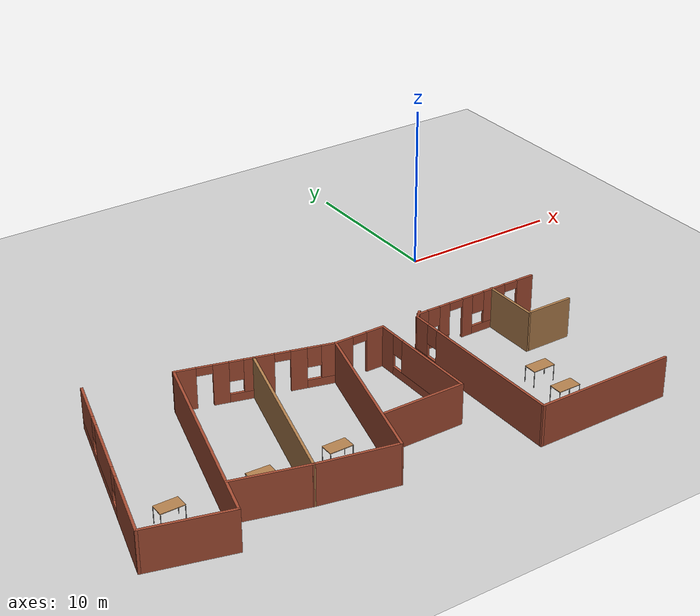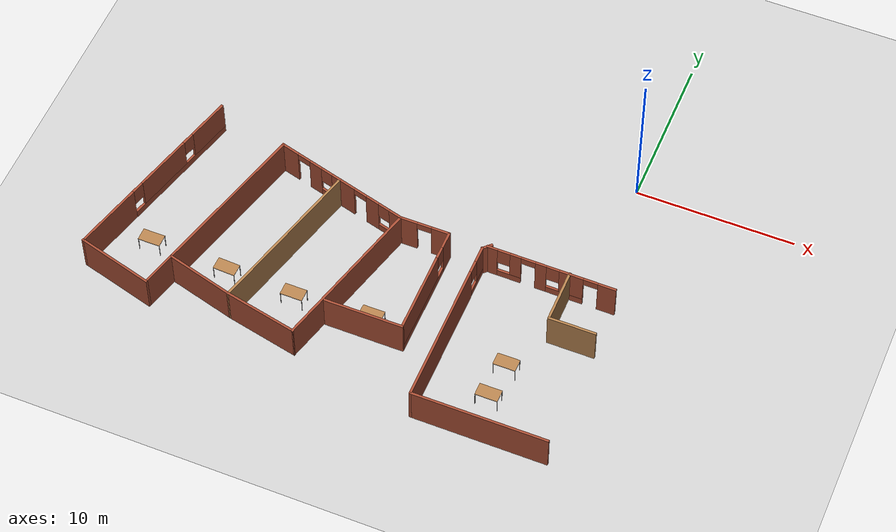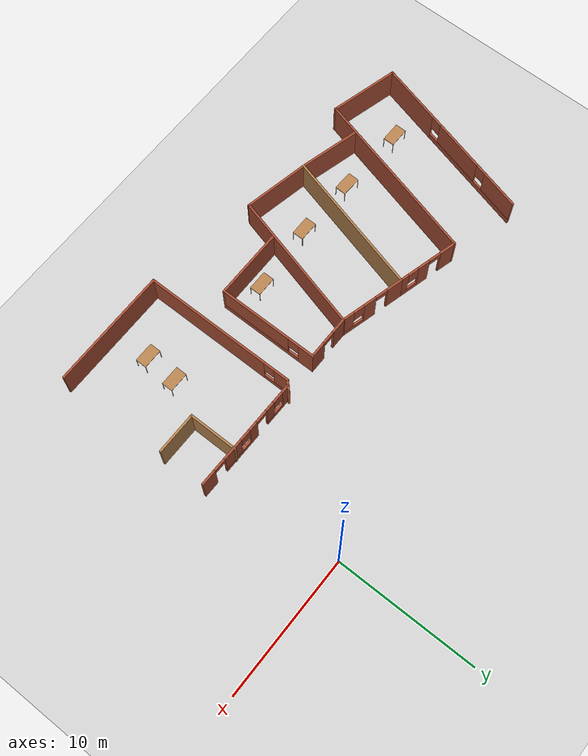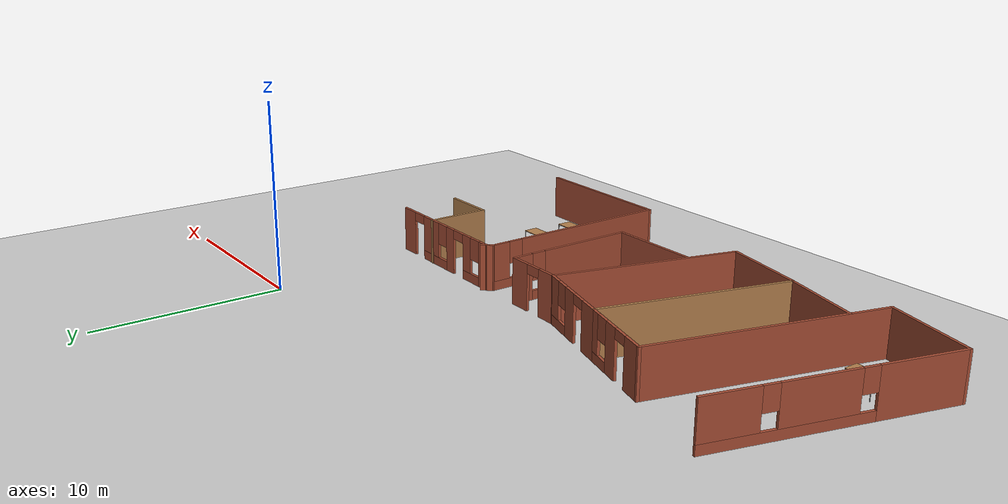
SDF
<sdf version="1.6">
 <world name="default">
  <model name="ground_plane">
   <static>1</static>
   <link name="link">
    <collision name="collision">
     <geometry><plane><normal>0 0 1</normal><size>100 100</size></plane></geometry>
     <surface><friction><ode><mu>100</mu><mu2>50</mu2></ode></friction></surface>
    </collision>
    <visual name="visual">
     <cast_shadows>0</cast_shadows>
     <geometry><plane><normal>0 0 1</normal><size>100 100</size></plane></geometry>
     <material>
      <script><uri>file://media/materials/scripts/gazebo.material</uri><name>Gazebo/Grey</name></script>
     </material>
    </visual>
   </link>
  </model>
  <model name="vital">
   <pose>1.23922 -2.19602 0 0 -0 0</pose>
   <link name="Wall_100">
    <collision name="Wall_100_Collision">
     <geometry><box><size>5 0.15 2.5</size></box></geometry>
     <pose>0 0 1.25 0 -0 0</pose>
    </collision>
    <visual name="Wall_100_Visual">
     <pose>0 0 1.25 0 -0 0</pose>
     <geometry><box><size>5 0.15 2.5</size></box></geometry>
     <material>
      <script><uri>file://media/materials/scripts/gazebo.material</uri><name>Gazebo/Bricks</name></script>
      <ambient>1 1 1 1</ambient>
     </material>
    </visual>
    <pose>-27.234 -15.8492 0 0 -0 2.87979</pose>
   </link>
   <link name="Wall_101">
    <pose>-27.9458 -9.13623 0 0 -0 1.309</pose>
    <visual name="Wall_101_Visual_0">
     <pose>-4.12668 0 1.25 0 -0 0</pose>
     <geometry><box><size>4.49665 0.15 2.5</size></box></geometry>
     <material>
      <script><uri>file://media/materials/scripts/gazebo.material</uri><name>Gazebo/Bricks</name></script>
      <ambient>1 1 1 1</ambient>
     </material>
    </visual>
    <collision name="Wall_101_Collision_0">
     <geometry><box><size>4.49665 0.15 2.5</size></box></geometry>
     <pose>-4.12668 0 1.25 0 -0 0</pose>
    </collision>
    <visual name="Wall_101_Visual_1">
     <pose>2.24832 0 0.25 0 -0 0</pose>
     <geometry><box><size>8.25336 0.15 0.5</size></box></geometry>
     <material>
      <script><uri>file://media/materials/scripts/gazebo.material</uri><name>Gazebo/Bricks</name></script>
      <ambient>1 1 1 1</ambient>
     </material>
    </visual>
    <collision name="Wall_101_Collision_1">
     <geometry><box><size>8.25336 0.15 0.5</size></box></geometry>
     <pose>2.24832 0 0.25 0 -0 0</pose>
    </collision>
    <visual name="Wall_101_Visual_2">
     <pose>0.830511 0 1.5 0 -0 0</pose>
     <geometry><box><size>3.81773 0.15 2</size></box></geometry>
     <material>
      <script><uri>file://media/materials/scripts/gazebo.material</uri><name>Gazebo/Bricks</name></script>
      <ambient>1 1 1 1</ambient>
     </material>
    </visual>
    <collision name="Wall_101_Collision_2">
     <geometry><box><size>3.81773 0.15 2</size></box></geometry>
     <pose>0.830511 0 1.5 0 -0 0</pose>
    </collision>
    <visual name="Wall_101_Visual_3">
     <pose>4.95719 0 1.5 0 -0 0</pose>
     <geometry><box><size>2.83562 0.15 2</size></box></geometry>
     <material>
      <script><uri>file://media/materials/scripts/gazebo.material</uri><name>Gazebo/Bricks</name></script>
      <ambient>1 1 1 1</ambient>
     </material>
    </visual>
    <collision name="Wall_101_Collision_3">
     <geometry><box><size>2.83562 0.15 2</size></box></geometry>
     <pose>4.95719 0 1.5 0 -0 0</pose>
    </collision>
    <visual name="Wall_101_Visual_4">
     <pose>-1.47836 0 1.9 0 -0 0</pose>
     <geometry><box><size>0.8 0.15 1.2</size></box></geometry>
     <material>
      <script><uri>file://media/materials/scripts/gazebo.material</uri><name>Gazebo/Bricks</name></script>
      <ambient>1 1 1 1</ambient>
     </material>
    </visual>
    <collision name="Wall_101_Collision_4">
     <geometry><box><size>0.8 0.15 1.2</size></box></geometry>
     <pose>-1.47836 0 1.9 0 -0 0</pose>
    </collision>
    <visual name="Wall_101_Visual_5">
     <pose>3.13938 0 1.9 0 -0 0</pose>
     <geometry><box><size>0.8 0.15 1.2</size></box></geometry>
     <material>
      <script><uri>file://media/materials/scripts/gazebo.material</uri><name>Gazebo/Bricks</name></script>
      <ambient>1 1 1 1</ambient>
     </material>
    </visual>
    <collision name="Wall_101_Collision_5">
     <geometry><box><size>0.8 0.15 1.2</size></box></geometry>
     <pose>3.13938 0 1.9 0 -0 0</pose>
    </collision>
   </link>
   <link name="Wall_104">
    <pose>-19.5297 -4.8691 0 0 0 -0.261799</pose>
    <visual name="Wall_104_Visual_0">
     <pose>-1.62247 0 1.25 0 -0 0</pose>
     <geometry><box><size>1.25506 0.15 2.5</size></box></geometry>
     <material>
      <script><uri>file://media/materials/scripts/gazebo.material</uri><name>Gazebo/Bricks</name></script>
      <ambient>1 1 1 1</ambient>
     </material>
    </visual>
    <collision name="Wall_104_Collision_0">
     <geometry><box><size>1.25506 0.15 2.5</size></box></geometry>
     <pose>-1.62247 0 1.25 0 -0 0</pose>
    </collision>
    <visual name="Wall_104_Visual_1">
     <pose>0.350281 0 1.25 0 -0 0</pose>
     <geometry><box><size>0.890442 0.15 2.5</size></box></geometry>
     <material>
      <script><uri>file://media/materials/scripts/gazebo.material</uri><name>Gazebo/Bricks</name></script>
      <ambient>1 1 1 1</ambient>
     </material>
    </visual>
    <collision name="Wall_104_Collision_1">
     <geometry><box><size>0.890442 0.15 2.5</size></box></geometry>
     <pose>0.350281 0 1.25 0 -0 0</pose>
    </collision>
    <visual name="Wall_104_Visual_2">
     <pose>1.52275 0 0.25 0 -0 0</pose>
     <geometry><box><size>1.4545 0.15 0.5</size></box></geometry>
     <material>
      <script><uri>file://media/materials/scripts/gazebo.material</uri><name>Gazebo/Bricks</name></script>
      <ambient>1 1 1 1</ambient>
     </material>
    </visual>
    <collision name="Wall_104_Collision_2">
     <geometry><box><size>1.4545 0.15 0.5</size></box></geometry>
     <pose>1.52275 0 0.25 0 -0 0</pose>
    </collision>
    <visual name="Wall_104_Visual_3">
     <pose>1.92275 0 1.5 0 -0 0</pose>
     <geometry><box><size>0.654498 0.15 2</size></box></geometry>
     <material>
      <script><uri>file://media/materials/scripts/gazebo.material</uri><name>Gazebo/Bricks</name></script>
      <ambient>1 1 1 1</ambient>
     </material>
    </visual>
    <collision name="Wall_104_Collision_3">
     <geometry><box><size>0.654498 0.15 2</size></box></geometry>
     <pose>1.92275 0 1.5 0 -0 0</pose>
    </collision>
    <visual name="Wall_104_Visual_4">
     <pose>1.1955 0 1.9 0 -0 0</pose>
     <geometry><box><size>0.8 0.15 1.2</size></box></geometry>
     <material>
      <script><uri>file://media/materials/scripts/gazebo.material</uri><name>Gazebo/Bricks</name></script>
      <ambient>1 1 1 1</ambient>
     </material>
    </visual>
    <collision name="Wall_104_Collision_4">
     <geometry><box><size>0.8 0.15 1.2</size></box></geometry>
     <pose>1.1955 0 1.9 0 -0 0</pose>
    </collision>
    <visual name="Wall_104_Visual_5">
     <pose>-0.54494 0 2.25 0 -0 0</pose>
     <geometry><box><size>0.9 0.15 0.5</size></box></geometry>
     <material>
      <script><uri>file://media/materials/scripts/gazebo.material</uri><name>Gazebo/Bricks</name></script>
      <ambient>1 1 1 1</ambient>
     </material>
    </visual>
    <collision name="Wall_104_Collision_5">
     <geometry><box><size>0.9 0.15 0.5</size></box></geometry>
     <pose>-0.54494 0 2.25 0 -0 0</pose>
    </collision>
   </link>
   <link name="Wall_105">
    <collision name="Wall_105_Collision">
     <geometry><box><size>10.5 0.15 2.5</size></box></geometry>
     <pose>0 0 1.25 0 -0 0</pose>
    </collision>
    <visual name="Wall_105_Visual">
     <pose>0 0 1.25 0 -0 0</pose>
     <geometry><box><size>10.5 0.15 2.5</size></box></geometry>
     <material>
      <script><uri>file://media/materials/scripts/gazebo.material</uri><name>Gazebo/Wood</name></script>
      <ambient>1 1 1 1</ambient>
     </material>
    </visual>
    <pose>-18.7682 -10.4307 0 0 0 -1.8326</pose>
   </link>
   <link name="Wall_106">
    <collision name="Wall_106_Collision">
     <geometry><box><size>4.5 0.15 2.5</size></box></geometry>
     <pose>0 0 1.25 0 -0 0</pose>
    </collision>
    <visual name="Wall_106_Visual">
     <pose>0 0 1.25 0 -0 0</pose>
     <geometry><box><size>4.5 0.15 2.5</size></box></geometry>
     <material>
      <script><uri>file://media/materials/scripts/gazebo.material</uri><name>Gazebo/Bricks</name></script>
      <ambient>1 1 1 1</ambient>
     </material>
    </visual>
    <pose>-22.2084 -14.8664 0 0 -0 2.87979</pose>
   </link>
   <link name="Wall_108">
    <pose>-15.2071 -6.02732 0 0 0 -0.261799</pose>
    <visual name="Wall_108_Visual_0">
     <pose>-1.7708 0 1.25 0 -0 0</pose>
     <geometry><box><size>1.2084 0.15 2.5</size></box></geometry>
     <material>
      <script><uri>file://media/materials/scripts/gazebo.material</uri><name>Gazebo/Bricks</name></script>
      <ambient>1 1 1 1</ambient>
     </material>
    </visual>
    <collision name="Wall_108_Collision_0">
     <geometry><box><size>1.2084 0.15 2.5</size></box></geometry>
     <pose>-1.7708 0 1.25 0 -0 0</pose>
    </collision>
    <visual name="Wall_108_Visual_1">
     <pose>0.199682 0 1.25 0 -0 0</pose>
     <geometry><box><size>0.932562 0.15 2.5</size></box></geometry>
     <material>
      <script><uri>file://media/materials/scripts/gazebo.material</uri><name>Gazebo/Bricks</name></script>
      <ambient>1 1 1 1</ambient>
     </material>
    </visual>
    <collision name="Wall_108_Collision_1">
     <geometry><box><size>0.932562 0.15 2.5</size></box></geometry>
     <pose>0.199682 0 1.25 0 -0 0</pose>
    </collision>
    <visual name="Wall_108_Visual_2">
     <pose>1.52048 0 0.25 0 -0 0</pose>
     <geometry><box><size>1.70904 0.15 0.5</size></box></geometry>
     <material>
      <script><uri>file://media/materials/scripts/gazebo.material</uri><name>Gazebo/Bricks</name></script>
      <ambient>1 1 1 1</ambient>
     </material>
    </visual>
    <collision name="Wall_108_Collision_2">
     <geometry><box><size>1.70904 0.15 0.5</size></box></geometry>
     <pose>1.52048 0 0.25 0 -0 0</pose>
    </collision>
    <visual name="Wall_108_Visual_3">
     <pose>1.92048 0 1.5 0 -0 0</pose>
     <geometry><box><size>0.909036 0.15 2</size></box></geometry>
     <material>
      <script><uri>file://media/materials/scripts/gazebo.material</uri><name>Gazebo/Bricks</name></script>
      <ambient>1 1 1 1</ambient>
     </material>
    </visual>
    <collision name="Wall_108_Collision_3">
     <geometry><box><size>0.909036 0.15 2</size></box></geometry>
     <pose>1.92048 0 1.5 0 -0 0</pose>
    </collision>
    <visual name="Wall_108_Visual_4">
     <pose>1.06596 0 1.9 0 -0 0</pose>
     <geometry><box><size>0.8 0.15 1.2</size></box></geometry>
     <material>
      <script><uri>file://media/materials/scripts/gazebo.material</uri><name>Gazebo/Bricks</name></script>
      <ambient>1 1 1 1</ambient>
     </material>
    </visual>
    <collision name="Wall_108_Collision_4">
     <geometry><box><size>0.8 0.15 1.2</size></box></geometry>
     <pose>1.06596 0 1.9 0 -0 0</pose>
    </collision>
    <visual name="Wall_108_Visual_5">
     <pose>-0.716599 0 2.25 0 -0 0</pose>
     <geometry><box><size>0.9 0.15 0.5</size></box></geometry>
     <material>
      <script><uri>file://media/materials/scripts/gazebo.material</uri><name>Gazebo/Bricks</name></script>
      <ambient>1 1 1 1</ambient>
     </material>
    </visual>
    <collision name="Wall_108_Collision_5">
     <geometry><box><size>0.9 0.15 0.5</size></box></geometry>
     <pose>-0.716599 0 2.25 0 -0 0</pose>
    </collision>
   </link>
   <link name="Wall_109">
    <collision name="Wall_109_Collision">
     <geometry><box><size>10.25 0.15 2.5</size></box></geometry>
     <pose>0 0 1.25 0 -0 0</pose>
    </collision>
    <visual name="Wall_109_Visual">
     <pose>0 0 1.25 0 -0 0</pose>
     <geometry><box><size>10.25 0.15 2.5</size></box></geometry>
     <material>
      <script><uri>file://media/materials/scripts/gazebo.material</uri><name>Gazebo/Bricks</name></script>
      <ambient>1 1 1 1</ambient>
     </material>
    </visual>
    <pose>-14.2925 -11.5005 0 0 0 -1.8326</pose>
   </link>
   <link name="Wall_110">
    <collision name="Wall_110_Collision">
     <geometry><box><size>4.75679 0.15 2.5</size></box></geometry>
     <pose>0 0 1.25 0 -0 0</pose>
    </collision>
    <visual name="Wall_110_Visual">
     <pose>0 0 1.25 0 -0 0</pose>
     <geometry><box><size>4.75679 0.15 2.5</size></box></geometry>
     <material>
      <script><uri>file://media/materials/scripts/gazebo.material</uri><name>Gazebo/Bricks</name></script>
      <ambient>1 1 1 1</ambient>
     </material>
    </visual>
    <pose>-17.8536 -15.9039 0 0 -0 2.93409</pose>
   </link>
   <link name="Wall_112">
    <pose>-11.4355 -6.6226 0 0 -0 0</pose>
    <visual name="Wall_112_Visual_0">
     <pose>-1.04973 0 1.25 0 -0 0</pose>
     <geometry><box><size>1.15054 0.15 2.5</size></box></geometry>
     <material>
      <script><uri>file://media/materials/scripts/gazebo.material</uri><name>Gazebo/Bricks</name></script>
      <ambient>1 1 1 1</ambient>
     </material>
    </visual>
    <collision name="Wall_112_Collision_0">
     <geometry><box><size>1.15054 0.15 2.5</size></box></geometry>
     <pose>-1.04973 0 1.25 0 -0 0</pose>
    </collision>
    <visual name="Wall_112_Visual_1">
     <pose>1.02527 0 1.25 0 -0 0</pose>
     <geometry><box><size>1.19946 0.15 2.5</size></box></geometry>
     <material>
      <script><uri>file://media/materials/scripts/gazebo.material</uri><name>Gazebo/Bricks</name></script>
      <ambient>1 1 1 1</ambient>
     </material>
    </visual>
    <collision name="Wall_112_Collision_1">
     <geometry><box><size>1.19946 0.15 2.5</size></box></geometry>
     <pose>1.02527 0 1.25 0 -0 0</pose>
    </collision>
    <visual name="Wall_112_Visual_2">
     <pose>-0.024462 0 2.25 0 -0 0</pose>
     <geometry><box><size>0.9 0.15 0.5</size></box></geometry>
     <material>
      <script><uri>file://media/materials/scripts/gazebo.material</uri><name>Gazebo/Bricks</name></script>
      <ambient>1 1 1 1</ambient>
     </material>
    </visual>
    <collision name="Wall_112_Collision_2">
     <geometry><box><size>0.9 0.15 0.5</size></box></geometry>
     <pose>-0.024462 0 2.25 0 -0 0</pose>
    </collision>
   </link>
   <link name="Wall_113">
    <pose>-9.88551 -10.1726 0 0 0 -1.5708</pose>
    <visual name="Wall_113_Visual_0">
     <pose>-3.04191 0 1.25 0 -0 0</pose>
     <geometry><box><size>1.16617 0.15 2.5</size></box></geometry>
     <material>
      <script><uri>file://media/materials/scripts/gazebo.material</uri><name>Gazebo/Bricks</name></script>
      <ambient>1 1 1 1</ambient>
     </material>
    </visual>
    <collision name="Wall_113_Collision_0">
     <geometry><box><size>1.16617 0.15 2.5</size></box></geometry>
     <pose>-3.04191 0 1.25 0 -0 0</pose>
    </collision>
    <visual name="Wall_113_Visual_1">
     <pose>0.583086 0 0.25 0 -0 0</pose>
     <geometry><box><size>6.08383 0.15 0.5</size></box></geometry>
     <material>
      <script><uri>file://media/materials/scripts/gazebo.material</uri><name>Gazebo/Bricks</name></script>
      <ambient>1 1 1 1</ambient>
     </material>
    </visual>
    <collision name="Wall_113_Collision_1">
     <geometry><box><size>6.08383 0.15 0.5</size></box></geometry>
     <pose>0.583086 0 0.25 0 -0 0</pose>
    </collision>
    <visual name="Wall_113_Visual_2">
     <pose>0.983086 0 1.5 0 -0 0</pose>
     <geometry><box><size>5.28383 0.15 2</size></box></geometry>
     <material>
      <script><uri>file://media/materials/scripts/gazebo.material</uri><name>Gazebo/Bricks</name></script>
      <ambient>1 1 1 1</ambient>
     </material>
    </visual>
    <collision name="Wall_113_Collision_2">
     <geometry><box><size>5.28383 0.15 2</size></box></geometry>
     <pose>0.983086 0 1.5 0 -0 0</pose>
    </collision>
    <visual name="Wall_113_Visual_3">
     <pose>-2.05883 0 1.9 0 -0 0</pose>
     <geometry><box><size>0.8 0.15 1.2</size></box></geometry>
     <material>
      <script><uri>file://media/materials/scripts/gazebo.material</uri><name>Gazebo/Bricks</name></script>
      <ambient>1 1 1 1</ambient>
     </material>
    </visual>
    <collision name="Wall_113_Collision_3">
     <geometry><box><size>0.8 0.15 1.2</size></box></geometry>
     <pose>-2.05883 0 1.9 0 -0 0</pose>
    </collision>
   </link>
   <link name="Wall_114">
    <collision name="Wall_114_Collision">
     <geometry><box><size>5 0.15 2.5</size></box></geometry>
     <pose>0 0 1.25 0 -0 0</pose>
    </collision>
    <visual name="Wall_114_Visual">
     <pose>0 0 1.25 0 -0 0</pose>
     <geometry><box><size>5 0.15 2.5</size></box></geometry>
     <material>
      <script><uri>file://media/materials/scripts/gazebo.material</uri><name>Gazebo/Bricks</name></script>
      <ambient>1 1 1 1</ambient>
     </material>
    </visual>
    <pose>-12.3105 -13.7226 0 0 -0 3.14159</pose>
   </link>
   <link name="Wall_116">
    <pose>-3.44702 -6.63306 0 0 0 -0.006694</pose>
    <visual name="Wall_116_Visual_0">
     <pose>-3.71942 0 1.25 0 -0 0</pose>
     <geometry><box><size>0.704332 0.15 2.5</size></box></geometry>
     <material>
      <script><uri>file://media/materials/scripts/gazebo.material</uri><name>Gazebo/Bricks</name></script>
      <ambient>1 1 1 1</ambient>
     </material>
    </visual>
    <collision name="Wall_116_Collision_0">
     <geometry><box><size>0.704332 0.15 2.5</size></box></geometry>
     <pose>-3.71942 0 1.25 0 -0 0</pose>
    </collision>
    <visual name="Wall_116_Visual_1">
     <pose>-0.624879 0 1.25 0 -0 0</pose>
     <geometry><box><size>0.697096 0.15 2.5</size></box></geometry>
     <material>
      <script><uri>file://media/materials/scripts/gazebo.material</uri><name>Gazebo/Bricks</name></script>
      <ambient>1 1 1 1</ambient>
     </material>
    </visual>
    <collision name="Wall_116_Collision_1">
     <geometry><box><size>0.697096 0.15 2.5</size></box></geometry>
     <pose>-0.624879 0 1.25 0 -0 0</pose>
    </collision>
    <visual name="Wall_116_Visual_2">
     <pose>3.5022 0 1.25 0 -0 0</pose>
     <geometry><box><size>1.13877 0.15 2.5</size></box></geometry>
     <material>
      <script><uri>file://media/materials/scripts/gazebo.material</uri><name>Gazebo/Bricks</name></script>
      <ambient>1 1 1 1</ambient>
     </material>
    </visual>
    <collision name="Wall_116_Collision_2">
     <geometry><box><size>1.13877 0.15 2.5</size></box></geometry>
     <pose>3.5022 0 1.25 0 -0 0</pose>
    </collision>
    <visual name="Wall_116_Visual_3">
     <pose>-2.62034 0 0.25 0 -0 0</pose>
     <geometry><box><size>1.49383 0.15 0.5</size></box></geometry>
     <material>
      <script><uri>file://media/materials/scripts/gazebo.material</uri><name>Gazebo/Bricks</name></script>
      <ambient>1 1 1 1</ambient>
     </material>
    </visual>
    <collision name="Wall_116_Collision_3">
     <geometry><box><size>1.49383 0.15 0.5</size></box></geometry>
     <pose>-2.62034 0 0.25 0 -0 0</pose>
    </collision>
    <visual name="Wall_116_Visual_4">
     <pose>0.878245 0 0.25 0 -0 0</pose>
     <geometry><box><size>2.30915 0.15 0.5</size></box></geometry>
     <material>
      <script><uri>file://media/materials/scripts/gazebo.material</uri><name>Gazebo/Bricks</name></script>
      <ambient>1 1 1 1</ambient>
     </material>
    </visual>
    <collision name="Wall_116_Collision_4">
     <geometry><box><size>2.30915 0.15 0.5</size></box></geometry>
     <pose>0.878245 0 0.25 0 -0 0</pose>
    </collision>
    <visual name="Wall_116_Visual_5">
     <pose>-2.22034 0 1.5 0 -0 0</pose>
     <geometry><box><size>0.693829 0.15 2</size></box></geometry>
     <material>
      <script><uri>file://media/materials/scripts/gazebo.material</uri><name>Gazebo/Bricks</name></script>
      <ambient>1 1 1 1</ambient>
     </material>
    </visual>
    <collision name="Wall_116_Collision_5">
     <geometry><box><size>0.693829 0.15 2</size></box></geometry>
     <pose>-2.22034 0 1.5 0 -0 0</pose>
    </collision>
    <visual name="Wall_116_Visual_6">
     <pose>-2.22034 0 1.5 0 -0 0</pose>
     <geometry><box><size>0.693829 0.15 2</size></box></geometry>
     <material>
      <script><uri>file://media/materials/scripts/gazebo.material</uri><name>Gazebo/Bricks</name></script>
      <ambient>1 1 1 1</ambient>
     </material>
    </visual>
    <collision name="Wall_116_Collision_6">
     <geometry><box><size>0.693829 0.15 2</size></box></geometry>
     <pose>-2.22034 0 1.5 0 -0 0</pose>
    </collision>
    <visual name="Wall_116_Visual_7">
     <pose>1.27825 0 1.5 0 -0 0</pose>
     <geometry><box><size>1.50915 0.15 2</size></box></geometry>
     <material>
      <script><uri>file://media/materials/scripts/gazebo.material</uri><name>Gazebo/Bricks</name></script>
      <ambient>1 1 1 1</ambient>
     </material>
    </visual>
    <collision name="Wall_116_Collision_7">
     <geometry><box><size>1.50915 0.15 2</size></box></geometry>
     <pose>1.27825 0 1.5 0 -0 0</pose>
    </collision>
    <visual name="Wall_116_Visual_8">
     <pose>-2.96726 0 1.9 0 -0 0</pose>
     <geometry><box><size>0.8 0.15 1.2</size></box></geometry>
     <material>
      <script><uri>file://media/materials/scripts/gazebo.material</uri><name>Gazebo/Bricks</name></script>
      <ambient>1 1 1 1</ambient>
     </material>
    </visual>
    <collision name="Wall_116_Collision_8">
     <geometry><box><size>0.8 0.15 1.2</size></box></geometry>
     <pose>-2.96726 0 1.9 0 -0 0</pose>
    </collision>
    <visual name="Wall_116_Visual_9">
     <pose>0.12367 0 1.9 0 -0 0</pose>
     <geometry><box><size>0.8 0.15 1.2</size></box></geometry>
     <material>
      <script><uri>file://media/materials/scripts/gazebo.material</uri><name>Gazebo/Bricks</name></script>
      <ambient>1 1 1 1</ambient>
     </material>
    </visual>
    <collision name="Wall_116_Collision_9">
     <geometry><box><size>0.8 0.15 1.2</size></box></geometry>
     <pose>0.12367 0 1.9 0 -0 0</pose>
    </collision>
    <visual name="Wall_116_Visual_10">
     <pose>-1.42343 0 2.25 0 -0 0</pose>
     <geometry><box><size>0.9 0.15 0.5</size></box></geometry>
     <material>
      <script><uri>file://media/materials/scripts/gazebo.material</uri><name>Gazebo/Bricks</name></script>
      <ambient>1 1 1 1</ambient>
     </material>
    </visual>
    <collision name="Wall_116_Collision_10">
     <geometry><box><size>0.9 0.15 0.5</size></box></geometry>
     <pose>-1.42343 0 2.25 0 -0 0</pose>
    </collision>
    <visual name="Wall_116_Visual_11">
     <pose>-1.42343 0 2.25 0 -0 0</pose>
     <geometry><box><size>0.9 0.15 0.5</size></box></geometry>
     <material>
      <script><uri>file://media/materials/scripts/gazebo.material</uri><name>Gazebo/Bricks</name></script>
      <ambient>1 1 1 1</ambient>
     </material>
    </visual>
    <collision name="Wall_116_Collision_11">
     <geometry><box><size>0.9 0.15 0.5</size></box></geometry>
     <pose>-1.42343 0 2.25 0 -0 0</pose>
    </collision>
    <visual name="Wall_116_Visual_12">
     <pose>2.48282 0 2.25 0 -0 0</pose>
     <geometry><box><size>0.9 0.15 0.5</size></box></geometry>
     <material>
      <script><uri>file://media/materials/scripts/gazebo.material</uri><name>Gazebo/Bricks</name></script>
      <ambient>1 1 1 1</ambient>
     </material>
    </visual>
    <collision name="Wall_116_Collision_12">
     <geometry><box><size>0.9 0.15 0.5</size></box></geometry>
     <pose>2.48282 0 2.25 0 -0 0</pose>
    </collision>
   </link>
   <link name="Wall_118">
    <collision name="Wall_118_Collision">
     <geometry><box><size>8.5 0.15 2.5</size></box></geometry>
     <pose>0 0 1.25 0 -0 0</pose>
    </collision>
    <visual name="Wall_118_Visual">
     <pose>0 0 1.25 0 -0 0</pose>
     <geometry><box><size>8.5 0.15 2.5</size></box></geometry>
     <material>
      <script><uri>file://media/materials/scripts/gazebo.material</uri><name>Gazebo/Bricks</name></script>
      <ambient>1 1 1 1</ambient>
     </material>
    </visual>
    <pose>-3.51851 -17.7063 0 0 -0 3.14159</pose>
   </link>
   <link name="Wall_119">
    <pose>-7.69351 -12.2813 0 0 -0 1.5708</pose>
    <visual name="Wall_119_Visual_0">
     <pose>-0.947604 0 1.25 0 -0 0</pose>
     <geometry><box><size>9.10479 0.15 2.5</size></box></geometry>
     <material>
      <script><uri>file://media/materials/scripts/gazebo.material</uri><name>Gazebo/Bricks</name></script>
      <ambient>1 1 1 1</ambient>
     </material>
    </visual>
    <collision name="Wall_119_Collision_0">
     <geometry><box><size>9.10479 0.15 2.5</size></box></geometry>
     <pose>-0.947604 0 1.25 0 -0 0</pose>
    </collision>
    <visual name="Wall_119_Visual_1">
     <pose>4.5524 0 0.25 0 -0 0</pose>
     <geometry><box><size>1.89521 0.15 0.5</size></box></geometry>
     <material>
      <script><uri>file://media/materials/scripts/gazebo.material</uri><name>Gazebo/Bricks</name></script>
      <ambient>1 1 1 1</ambient>
     </material>
    </visual>
    <collision name="Wall_119_Collision_1">
     <geometry><box><size>1.89521 0.15 0.5</size></box></geometry>
     <pose>4.5524 0 0.25 0 -0 0</pose>
    </collision>
    <visual name="Wall_119_Visual_2">
     <pose>4.9524 0 1.5 0 -0 0</pose>
     <geometry><box><size>1.09521 0.15 2</size></box></geometry>
     <material>
      <script><uri>file://media/materials/scripts/gazebo.material</uri><name>Gazebo/Bricks</name></script>
      <ambient>1 1 1 1</ambient>
     </material>
    </visual>
    <collision name="Wall_119_Collision_2">
     <geometry><box><size>1.09521 0.15 2</size></box></geometry>
     <pose>4.9524 0 1.5 0 -0 0</pose>
    </collision>
    <visual name="Wall_119_Visual_3">
     <pose>4.00479 0 1.9 0 -0 0</pose>
     <geometry><box><size>0.8 0.15 1.2</size></box></geometry>
     <material>
      <script><uri>file://media/materials/scripts/gazebo.material</uri><name>Gazebo/Bricks</name></script>
      <ambient>1 1 1 1</ambient>
     </material>
    </visual>
    <collision name="Wall_119_Collision_3">
     <geometry><box><size>0.8 0.15 1.2</size></box></geometry>
     <pose>4.00479 0 1.9 0 -0 0</pose>
    </collision>
   </link>
   <link name="Wall_120">
    <collision name="Wall_120_Collision">
     <geometry><box><size>0.75 0.15 2.5</size></box></geometry>
     <pose>0 0 1.25 0 -0 0</pose>
    </collision>
    <visual name="Wall_120_Visual">
     <pose>0 0 1.25 0 -0 0</pose>
     <geometry><box><size>0.75 0.15 2.5</size></box></geometry>
     <material>
      <script><uri>file://media/materials/scripts/gazebo.material</uri><name>Gazebo/Bricks</name></script>
      <ambient>1 1 1 1</ambient>
     </material>
    </visual>
    <pose>-7.48138 -6.64417 0 0 -0 0.785398</pose>
   </link>
   <link name="Wall_122">
    <collision name="Wall_122_Collision">
     <geometry><box><size>3.5 0.15 2.5</size></box></geometry>
     <pose>0 0 1.25 0 -0 0</pose>
    </collision>
    <visual name="Wall_122_Visual">
     <pose>0 0 1.25 0 -0 0</pose>
     <geometry><box><size>3.5 0.15 2.5</size></box></geometry>
     <material>
      <script><uri>file://media/materials/scripts/gazebo.material</uri><name>Gazebo/Wood</name></script>
      <ambient>1 1 1 1</ambient>
     </material>
    </visual>
    <pose>-2.29682 -8.28131 0 0 0 -1.5708</pose>
   </link>
   <link name="Wall_123">
    <collision name="Wall_123_Collision">
     <geometry><box><size>3 0.15 2.5</size></box></geometry>
     <pose>0 0 1.25 0 -0 0</pose>
    </collision>
    <visual name="Wall_123_Visual">
     <pose>0 0 1.25 0 -0 0</pose>
     <geometry><box><size>3 0.15 2.5</size></box></geometry>
     <material>
      <script><uri>file://media/materials/scripts/gazebo.material</uri><name>Gazebo/Wood</name></script>
      <ambient>1 1 1 1</ambient>
     </material>
    </visual>
    <pose>-0.871823 -9.95631 0 0 -0 0</pose>
   </link>
   <link name="Wall_99">
    <collision name="Wall_99_Collision">
     <geometry><box><size>12.75 0.15 2.5</size></box></geometry>
     <pose>0 0 1.25 0 -0 0</pose>
    </collision>
    <visual name="Wall_99_Visual">
     <pose>0 0 1.25 0 -0 0</pose>
     <geometry><box><size>12.75 0.15 2.5</size></box></geometry>
     <material>
      <script><uri>file://media/materials/scripts/gazebo.material</uri><name>Gazebo/Bricks</name></script>
      <ambient>1 1 1 1</ambient>
     </material>
    </visual>
    <pose>-23.2611 -10.3915 0 0 0 -1.8326</pose>
   </link>
   <static>1</static>
  </model>
  <model name="table">
   <static>0</static>
   <link name="link">
    <collision name="surface">
     <pose>0 0 1 0 -0 0</pose>
     <geometry><box><size>1.5 0.8 0.03</size></box></geometry>
     <surface><friction><ode><mu>0.6</mu><mu2>0.6</mu2></ode></friction></surface>
    </collision>
    <visual name="visual1">
     <pose>0 0 1 0 -0 0</pose>
     <geometry><box><size>1.4 0.8 0.04</size></box></geometry>
     <material>
      <script><uri>file://media/materials/scripts/gazebo.material</uri><name>Gazebo/Wood</name></script>
     </material>
    </visual>
    <collision name="front_left_leg">
     <pose>0.68 0.38 0.5 0 -0 0</pose>
     <geometry><cylinder><radius>0.02</radius><length>1</length></cylinder></geometry>
    </collision>
    <visual name="front_left_leg">
     <pose>0.68 0.38 0.5 0 -0 0</pose>
     <geometry><cylinder><radius>0.02</radius><length>1</length></cylinder></geometry>
     <material>
      <script><uri>file://media/materials/scripts/gazebo.material</uri><name>Gazebo/Grey</name></script>
     </material>
    </visual>
    <collision name="front_right_leg">
     <pose>0.68 -0.38 0.5 0 -0 0</pose>
     <geometry><cylinder><radius>0.02</radius><length>1</length></cylinder></geometry>
    </collision>
    <visual name="front_right_leg">
     <pose>0.68 -0.38 0.5 0 -0 0</pose>
     <geometry><cylinder><radius>0.02</radius><length>1</length></cylinder></geometry>
     <material>
      <script><uri>file://media/materials/scripts/gazebo.material</uri><name>Gazebo/Grey</name></script>
     </material>
    </visual>
    <collision name="back_right_leg">
     <pose>-0.68 -0.38 0.5 0 -0 0</pose>
     <geometry><cylinder><radius>0.02</radius><length>1</length></cylinder></geometry>
    </collision>
    <visual name="back_right_leg">
     <pose>-0.68 -0.38 0.5 0 -0 0</pose>
     <geometry><cylinder><radius>0.02</radius><length>1</length></cylinder></geometry>
     <material>
      <script><uri>file://media/materials/scripts/gazebo.material</uri><name>Gazebo/Grey</name></script>
     </material>
    </visual>
    <collision name="back_left_leg">
     <pose>-0.68 0.38 0.5 0 -0 0</pose>
     <geometry><cylinder><radius>0.02</radius><length>1</length></cylinder></geometry>
    </collision>
    <visual name="back_left_leg">
     <pose>-0.68 0.38 0.5 0 -0 0</pose>
     <geometry><cylinder><radius>0.02</radius><length>1</length></cylinder></geometry>
     <material>
      <script><uri>file://media/materials/scripts/gazebo.material</uri><name>Gazebo/Grey</name></script>
     </material>
    </visual>
    <inertial>
     <inertia><ixx>1</ixx><ixy>0</ixy><ixz>0</ixz><iyy>1</iyy><iyz>0</iyz><izz>1</izz></inertia>
     <mass>1</mass>
    </inertial>
   </link>
   <pose>-2.70683 -17.3168 -9e-06 -1e-06 0 0</pose>
  </model>
  <model name="table_0">
   <static>0</static>
   <link name="link">
    <collision name="surface">
     <pose>0 0 1 0 -0 0</pose>
     <geometry><box><size>1.5 0.8 0.03</size></box></geometry>
     <surface><friction><ode><mu>0.6</mu><mu2>0.6</mu2></ode></friction></surface>
    </collision>
    <visual name="visual1">
     <pose>0 0 1 0 -0 0</pose>
     <geometry><box><size>1.4 0.8 0.04</size></box></geometry>
     <material>
      <script><uri>file://media/materials/scripts/gazebo.material</uri><name>Gazebo/Wood</name></script>
     </material>
    </visual>
    <collision name="front_left_leg">
     <pose>0.68 0.38 0.5 0 -0 0</pose>
     <geometry><cylinder><radius>0.02</radius><length>1</length></cylinder></geometry>
    </collision>
    <visual name="front_left_leg">
     <pose>0.68 0.38 0.5 0 -0 0</pose>
     <geometry><cylinder><radius>0.02</radius><length>1</length></cylinder></geometry>
     <material>
      <script><uri>file://media/materials/scripts/gazebo.material</uri><name>Gazebo/Grey</name></script>
     </material>
    </visual>
    <collision name="front_right_leg">
     <pose>0.68 -0.38 0.5 0 -0 0</pose>
     <geometry><cylinder><radius>0.02</radius><length>1</length></cylinder></geometry>
    </collision>
    <visual name="front_right_leg">
     <pose>0.68 -0.38 0.5 0 -0 0</pose>
     <geometry><cylinder><radius>0.02</radius><length>1</length></cylinder></geometry>
     <material>
      <script><uri>file://media/materials/scripts/gazebo.material</uri><name>Gazebo/Grey</name></script>
     </material>
    </visual>
    <collision name="back_right_leg">
     <pose>-0.68 -0.38 0.5 0 -0 0</pose>
     <geometry><cylinder><radius>0.02</radius><length>1</length></cylinder></geometry>
    </collision>
    <visual name="back_right_leg">
     <pose>-0.68 -0.38 0.5 0 -0 0</pose>
     <geometry><cylinder><radius>0.02</radius><length>1</length></cylinder></geometry>
     <material>
      <script><uri>file://media/materials/scripts/gazebo.material</uri><name>Gazebo/Grey</name></script>
     </material>
    </visual>
    <collision name="back_left_leg">
     <pose>-0.68 0.38 0.5 0 -0 0</pose>
     <geometry><cylinder><radius>0.02</radius><length>1</length></cylinder></geometry>
    </collision>
    <visual name="back_left_leg">
     <pose>-0.68 0.38 0.5 0 -0 0</pose>
     <geometry><cylinder><radius>0.02</radius><length>1</length></cylinder></geometry>
     <material>
      <script><uri>file://media/materials/scripts/gazebo.material</uri><name>Gazebo/Grey</name></script>
     </material>
    </visual>
    <inertial>
     <inertia><ixx>1</ixx><ixy>0</ixy><ixz>0</ixz><iyy>1</iyy><iyz>0</iyz><izz>1</izz></inertia>
     <mass>1</mass>
    </inertial>
   </link>
   <pose>-2.52923 -14.9943 -9e-06 -1e-06 0 0</pose>
  </model>
  <model name="table_1">
   <static>0</static>
   <link name="link">
    <collision name="surface">
     <pose>0 0 1 0 -0 0</pose>
     <geometry><box><size>1.5 0.8 0.03</size></box></geometry>
     <surface><friction><ode><mu>0.6</mu><mu2>0.6</mu2></ode></friction></surface>
    </collision>
    <visual name="visual1">
     <pose>0 0 1 0 -0 0</pose>
     <geometry><box><size>1.4 0.8 0.04</size></box></geometry>
     <material>
      <script><uri>file://media/materials/scripts/gazebo.material</uri><name>Gazebo/Wood</name></script>
     </material>
    </visual>
    <collision name="front_left_leg">
     <pose>0.68 0.38 0.5 0 -0 0</pose>
     <geometry><cylinder><radius>0.02</radius><length>1</length></cylinder></geometry>
    </collision>
    <visual name="front_left_leg">
     <pose>0.68 0.38 0.5 0 -0 0</pose>
     <geometry><cylinder><radius>0.02</radius><length>1</length></cylinder></geometry>
     <material>
      <script><uri>file://media/materials/scripts/gazebo.material</uri><name>Gazebo/Grey</name></script>
     </material>
    </visual>
    <collision name="front_right_leg">
     <pose>0.68 -0.38 0.5 0 -0 0</pose>
     <geometry><cylinder><radius>0.02</radius><length>1</length></cylinder></geometry>
    </collision>
    <visual name="front_right_leg">
     <pose>0.68 -0.38 0.5 0 -0 0</pose>
     <geometry><cylinder><radius>0.02</radius><length>1</length></cylinder></geometry>
     <material>
      <script><uri>file://media/materials/scripts/gazebo.material</uri><name>Gazebo/Grey</name></script>
     </material>
    </visual>
    <collision name="back_right_leg">
     <pose>-0.68 -0.38 0.5 0 -0 0</pose>
     <geometry><cylinder><radius>0.02</radius><length>1</length></cylinder></geometry>
    </collision>
    <visual name="back_right_leg">
     <pose>-0.68 -0.38 0.5 0 -0 0</pose>
     <geometry><cylinder><radius>0.02</radius><length>1</length></cylinder></geometry>
     <material>
      <script><uri>file://media/materials/scripts/gazebo.material</uri><name>Gazebo/Grey</name></script>
     </material>
    </visual>
    <collision name="back_left_leg">
     <pose>-0.68 0.38 0.5 0 -0 0</pose>
     <geometry><cylinder><radius>0.02</radius><length>1</length></cylinder></geometry>
    </collision>
    <visual name="back_left_leg">
     <pose>-0.68 0.38 0.5 0 -0 0</pose>
     <geometry><cylinder><radius>0.02</radius><length>1</length></cylinder></geometry>
     <material>
      <script><uri>file://media/materials/scripts/gazebo.material</uri><name>Gazebo/Grey</name></script>
     </material>
    </visual>
    <inertial>
     <inertia><ixx>1</ixx><ixy>0</ixy><ixz>0</ixz><iyy>1</iyy><iyz>0</iyz><izz>1</izz></inertia>
     <mass>1</mass>
    </inertial>
   </link>
   <pose>-15.8789 -15.1971 -9e-06 0 -1e-06 0</pose>
  </model>
  <model name="table_2">
   <static>0</static>
   <link name="link">
    <collision name="surface">
     <pose>0 0 1 0 -0 0</pose>
     <geometry><box><size>1.5 0.8 0.03</size></box></geometry>
     <surface><friction><ode><mu>0.6</mu><mu2>0.6</mu2></ode></friction></surface>
    </collision>
    <visual name="visual1">
     <pose>0 0 1 0 -0 0</pose>
     <geometry><box><size>1.4 0.8 0.04</size></box></geometry>
     <material>
      <script><uri>file://media/materials/scripts/gazebo.material</uri><name>Gazebo/Wood</name></script>
     </material>
    </visual>
    <collision name="front_left_leg">
     <pose>0.68 0.38 0.5 0 -0 0</pose>
     <geometry><cylinder><radius>0.02</radius><length>1</length></cylinder></geometry>
    </collision>
    <visual name="front_left_leg">
     <pose>0.68 0.38 0.5 0 -0 0</pose>
     <geometry><cylinder><radius>0.02</radius><length>1</length></cylinder></geometry>
     <material>
      <script><uri>file://media/materials/scripts/gazebo.material</uri><name>Gazebo/Grey</name></script>
     </material>
    </visual>
    <collision name="front_right_leg">
     <pose>0.68 -0.38 0.5 0 -0 0</pose>
     <geometry><cylinder><radius>0.02</radius><length>1</length></cylinder></geometry>
    </collision>
    <visual name="front_right_leg">
     <pose>0.68 -0.38 0.5 0 -0 0</pose>
     <geometry><cylinder><radius>0.02</radius><length>1</length></cylinder></geometry>
     <material>
      <script><uri>file://media/materials/scripts/gazebo.material</uri><name>Gazebo/Grey</name></script>
     </material>
    </visual>
    <collision name="back_right_leg">
     <pose>-0.68 -0.38 0.5 0 -0 0</pose>
     <geometry><cylinder><radius>0.02</radius><length>1</length></cylinder></geometry>
    </collision>
    <visual name="back_right_leg">
     <pose>-0.68 -0.38 0.5 0 -0 0</pose>
     <geometry><cylinder><radius>0.02</radius><length>1</length></cylinder></geometry>
     <material>
      <script><uri>file://media/materials/scripts/gazebo.material</uri><name>Gazebo/Grey</name></script>
     </material>
    </visual>
    <collision name="back_left_leg">
     <pose>-0.68 0.38 0.5 0 -0 0</pose>
     <geometry><cylinder><radius>0.02</radius><length>1</length></cylinder></geometry>
    </collision>
    <visual name="back_left_leg">
     <pose>-0.68 0.38 0.5 0 -0 0</pose>
     <geometry><cylinder><radius>0.02</radius><length>1</length></cylinder></geometry>
     <material>
      <script><uri>file://media/materials/scripts/gazebo.material</uri><name>Gazebo/Grey</name></script>
     </material>
    </visual>
    <inertial>
     <inertia><ixx>1</ixx><ixy>0</ixy><ixz>0</ixz><iyy>1</iyy><iyz>0</iyz><izz>1</izz></inertia>
     <mass>1</mass>
    </inertial>
   </link>
   <pose>-20.2823 -15.0492 -6e-06 -1e-06 -0 -0.039822</pose>
  </model>
  <model name="table_3">
   <static>0</static>
   <link name="link">
    <collision name="surface">
     <pose>0 0 1 0 -0 0</pose>
     <geometry><box><size>1.5 0.8 0.03</size></box></geometry>
     <surface><friction><ode><mu>0.6</mu><mu2>0.6</mu2></ode></friction></surface>
    </collision>
    <visual name="visual1">
     <pose>0 0 1 0 -0 0</pose>
     <geometry><box><size>1.4 0.8 0.04</size></box></geometry>
     <material>
      <script><uri>file://media/materials/scripts/gazebo.material</uri><name>Gazebo/Wood</name></script>
     </material>
    </visual>
    <collision name="front_left_leg">
     <pose>0.68 0.38 0.5 0 -0 0</pose>
     <geometry><cylinder><radius>0.02</radius><length>1</length></cylinder></geometry>
    </collision>
    <visual name="front_left_leg">
     <pose>0.68 0.38 0.5 0 -0 0</pose>
     <geometry><cylinder><radius>0.02</radius><length>1</length></cylinder></geometry>
     <material>
      <script><uri>file://media/materials/scripts/gazebo.material</uri><name>Gazebo/Grey</name></script>
     </material>
    </visual>
    <collision name="front_right_leg">
     <pose>0.68 -0.38 0.5 0 -0 0</pose>
     <geometry><cylinder><radius>0.02</radius><length>1</length></cylinder></geometry>
    </collision>
    <visual name="front_right_leg">
     <pose>0.68 -0.38 0.5 0 -0 0</pose>
     <geometry><cylinder><radius>0.02</radius><length>1</length></cylinder></geometry>
     <material>
      <script><uri>file://media/materials/scripts/gazebo.material</uri><name>Gazebo/Grey</name></script>
     </material>
    </visual>
    <collision name="back_right_leg">
     <pose>-0.68 -0.38 0.5 0 -0 0</pose>
     <geometry><cylinder><radius>0.02</radius><length>1</length></cylinder></geometry>
    </collision>
    <visual name="back_right_leg">
     <pose>-0.68 -0.38 0.5 0 -0 0</pose>
     <geometry><cylinder><radius>0.02</radius><length>1</length></cylinder></geometry>
     <material>
      <script><uri>file://media/materials/scripts/gazebo.material</uri><name>Gazebo/Grey</name></script>
     </material>
    </visual>
    <collision name="back_left_leg">
     <pose>-0.68 0.38 0.5 0 -0 0</pose>
     <geometry><cylinder><radius>0.02</radius><length>1</length></cylinder></geometry>
    </collision>
    <visual name="back_left_leg">
     <pose>-0.68 0.38 0.5 0 -0 0</pose>
     <geometry><cylinder><radius>0.02</radius><length>1</length></cylinder></geometry>
     <material>
      <script><uri>file://media/materials/scripts/gazebo.material</uri><name>Gazebo/Grey</name></script>
     </material>
    </visual>
    <inertial>
     <inertia><ixx>1</ixx><ixy>0</ixy><ixz>0</ixz><iyy>1</iyy><iyz>0</iyz><izz>1</izz></inertia>
     <mass>1</mass>
    </inertial>
   </link>
   <pose>-25.2974 -14.8251 -9e-06 -1e-06 0 0</pose>
  </model>
  <model name="table_4">
   <static>0</static>
   <link name="link">
    <collision name="surface">
     <pose>0 0 1 0 -0 0</pose>
     <geometry><box><size>1.5 0.8 0.03</size></box></geometry>
     <surface><friction><ode><mu>0.6</mu><mu2>0.6</mu2></ode></friction></surface>
    </collision>
    <visual name="visual1">
     <pose>0 0 1 0 -0 0</pose>
     <geometry><box><size>1.4 0.8 0.04</size></box></geometry>
     <material>
      <script><uri>file://media/materials/scripts/gazebo.material</uri><name>Gazebo/Wood</name></script>
     </material>
    </visual>
    <collision name="front_left_leg">
     <pose>0.68 0.38 0.5 0 -0 0</pose>
     <geometry><cylinder><radius>0.02</radius><length>1</length></cylinder></geometry>
    </collision>
    <visual name="front_left_leg">
     <pose>0.68 0.38 0.5 0 -0 0</pose>
     <geometry><cylinder><radius>0.02</radius><length>1</length></cylinder></geometry>
     <material>
      <script><uri>file://media/materials/scripts/gazebo.material</uri><name>Gazebo/Grey</name></script>
     </material>
    </visual>
    <collision name="front_right_leg">
     <pose>0.68 -0.38 0.5 0 -0 0</pose>
     <geometry><cylinder><radius>0.02</radius><length>1</length></cylinder></geometry>
    </collision>
    <visual name="front_right_leg">
     <pose>0.68 -0.38 0.5 0 -0 0</pose>
     <geometry><cylinder><radius>0.02</radius><length>1</length></cylinder></geometry>
     <material>
      <script><uri>file://media/materials/scripts/gazebo.material</uri><name>Gazebo/Grey</name></script>
     </material>
    </visual>
    <collision name="back_right_leg">
     <pose>-0.68 -0.38 0.5 0 -0 0</pose>
     <geometry><cylinder><radius>0.02</radius><length>1</length></cylinder></geometry>
    </collision>
    <visual name="back_right_leg">
     <pose>-0.68 -0.38 0.5 0 -0 0</pose>
     <geometry><cylinder><radius>0.02</radius><length>1</length></cylinder></geometry>
     <material>
      <script><uri>file://media/materials/scripts/gazebo.material</uri><name>Gazebo/Grey</name></script>
     </material>
    </visual>
    <collision name="back_left_leg">
     <pose>-0.68 0.38 0.5 0 -0 0</pose>
     <geometry><cylinder><radius>0.02</radius><length>1</length></cylinder></geometry>
    </collision>
    <visual name="back_left_leg">
     <pose>-0.68 0.38 0.5 0 -0 0</pose>
     <geometry><cylinder><radius>0.02</radius><length>1</length></cylinder></geometry>
     <material>
      <script><uri>file://media/materials/scripts/gazebo.material</uri><name>Gazebo/Grey</name></script>
     </material>
    </visual>
    <inertial>
     <inertia><ixx>1</ixx><ixy>0</ixy><ixz>0</ixz><iyy>1</iyy><iyz>0</iyz><izz>1</izz></inertia>
     <mass>1</mass>
    </inertial>
   </link>
   <pose>-11.0441 -14.8646 -9e-06 -1e-06 0 0</pose>
  </model>
 </world>
</sdf>
